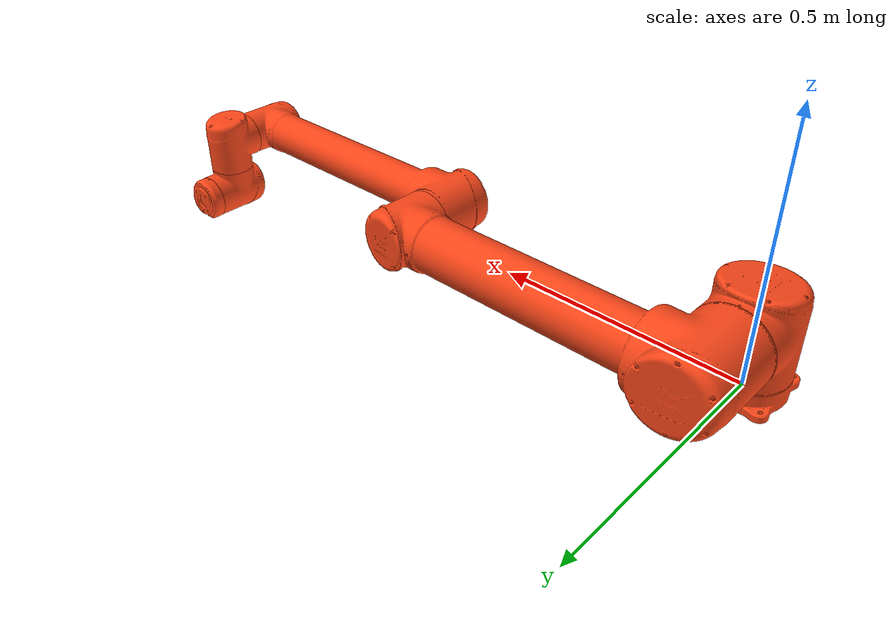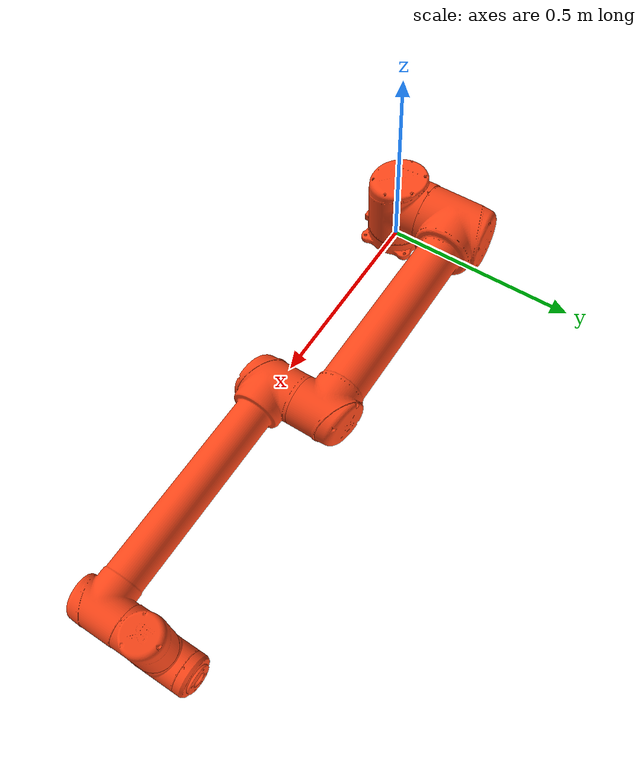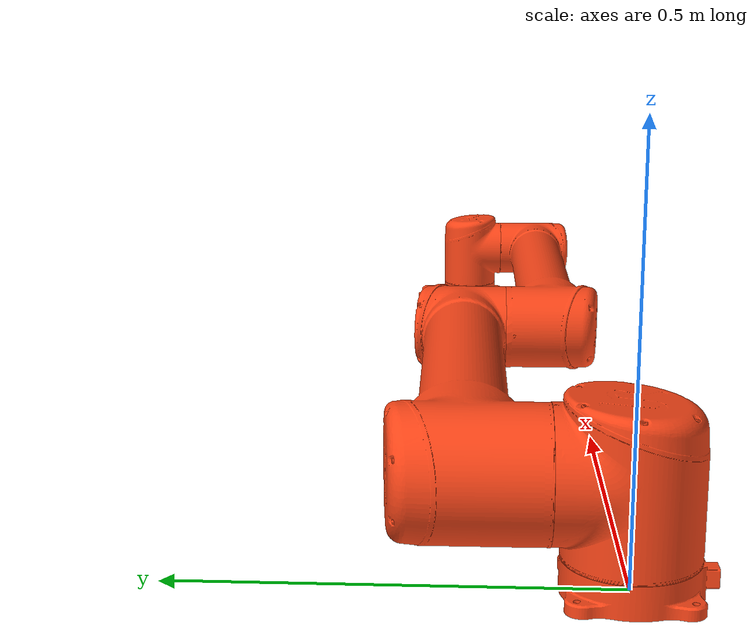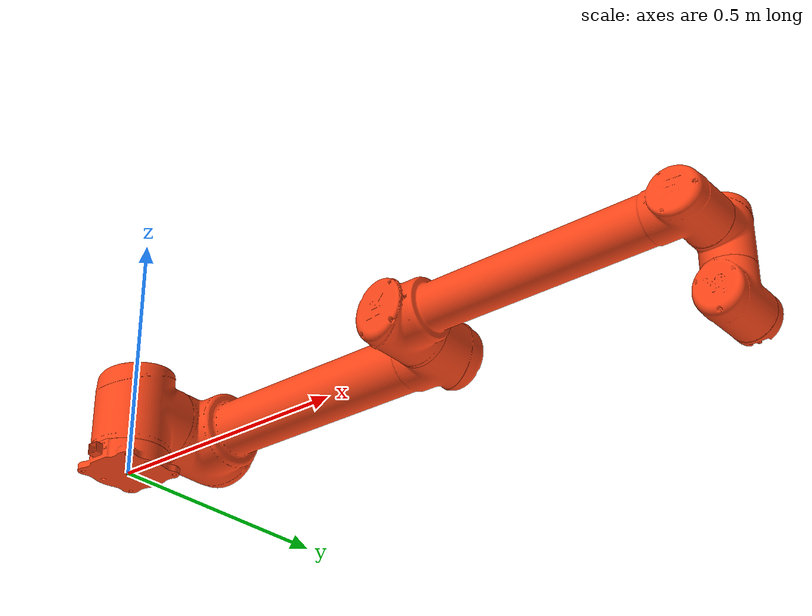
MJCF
<mujoco model="ur10_robot">
  <default>
    <default class="robot">
      <default class="motor">
        <joint />
        <motor />
      </default>
      <default class="visual">
        <geom material="visualgeom" contype="0" conaffinity="0" group="2" />
      </default>
      <default class="collision">
        <geom material="collision_material" condim="3" contype="0" conaffinity="1" priority="1" group="1" solref="0.005 1" friction="1 0.01 0.01" />
        <equality solimp="0.99 0.999 1e-05" solref="0.005 1" />
      </default>
    </default>
  </default>

  <compiler angle="radian" />

  <asset>
    <material name="LightGrey" rgba="0.7 0.7 0.7 1.0" />
    <material name="default_material" rgba="0.7 0.7 0.7 1" />
    <material name="collision_material" rgba="1.0 0.28 0.1 0.9" />
    <mesh name="base.stl" file="./collision/base.stl" />
    <mesh name="base.dae" file="./visual/base.dae" />
    <mesh name="shoulder.stl" file="./collision/shoulder.stl" />
    <mesh name="shoulder.dae" file="./visual/shoulder.dae" />
    <mesh name="upperarm.stl" file="./collision/upperarm.stl" />
    <mesh name="upperarm.dae" file="./visual/upperarm.dae" />
    <mesh name="forearm.stl" file="./collision/forearm.stl" />
    <mesh name="forearm.dae" file="./visual/forearm.dae" />
    <mesh name="wrist1.stl" file="./collision/wrist1.stl" />
    <mesh name="wrist1.dae" file="./visual/wrist1.dae" />
    <mesh name="wrist2.stl" file="./collision/wrist2.stl" />
    <mesh name="wrist2.dae" file="./visual/wrist2.dae" />
    <mesh name="wrist3.stl" file="./collision/wrist3.stl" />
    <mesh name="wrist3.dae" file="./visual/wrist3.dae" />
  </asset>

  <worldbody>
    <body name="base_link" pos="0.00000000 0.00000000 0.00000000" quat="1 0 0 0" childclass="robot">
      <freejoint name="floating_base" />
      <body name="base_link_inertia" pos="0 0 0" quat="6.123233995736766e-17 0.0 0.0 1.0">
        <inertial pos="0 0 0" quat="1.0 0.0 0.0 0.0" mass="4.0" diaginertia="0.0061063308908 0.0061063308908 0.01125" />
        <geom name="base_link_inertia_collision" pos="0 0 0" quat="6.123233995736766e-17 0.0 0.0 1.0" type="mesh" mesh="base.stl" class="collision" />
        <geom name="base_link_inertia_visual" pos="0 0 0" quat="6.123233995736766e-17 0.0 0.0 1.0" material="LightGrey" type="mesh" mesh="base.dae" class="visual" />
        <body name="shoulder_link" pos="0 0 0.1273" quat="1.0 0.0 0.0 0.0">
          <joint name="shoulder_pan_joint" type="hinge" ref="0.0" class="motor" range="-6.283185307179586 6.283185307179586" axis="0 0 1" />
          <inertial pos="0.021 -0.027 0.0" quat="0.7071067811865474 0.7071067811865477 0.0 0.0" mass="7.1" diaginertia="0.03408 0.03529 0.02156" />
          <geom name="shoulder_link_collision" pos="0 0 0" quat="6.123233995736766e-17 0.0 0.0 1.0" type="mesh" mesh="shoulder.stl" class="collision" />
          <geom name="shoulder_link_visual" pos="0 0 0" quat="6.123233995736766e-17 0.0 0.0 1.0" material="LightGrey" type="mesh" mesh="shoulder.dae" class="visual" />
          <body name="upper_arm_link" pos="0 0 0" quat="0.7071067811140325 0.7071067812590626 0.0 0.0">
            <joint name="shoulder_lift_joint" type="hinge" ref="0.0" class="motor" range="-6.283185307179586 6.283185307179586" axis="0 0 1" />
            <inertial pos="-0.232 0.0 0.158" quat="1.0 0.0 0.0 0.0" mass="12.7" diaginertia="0.02814 0.77068 0.76943" />
            <geom name="upper_arm_link_collision" pos="0 0 0.220941" quat="0.5000000000000001 0.5 -0.4999999999999999 -0.5" type="mesh" mesh="upperarm.stl" class="collision" />
            <geom name="upper_arm_link_visual" pos="0 0 0.220941" quat="0.5000000000000001 0.5 -0.4999999999999999 -0.5" material="LightGrey" type="mesh" mesh="upperarm.dae" class="visual" />
            <body name="forearm_link" pos="-0.612 0 0" quat="1.0 0.0 0.0 0.0">
              <joint name="elbow_joint" type="hinge" ref="0.0" class="motor" range="-3.141592653589793 3.141592653589793" axis="0 0 1" />
              <inertial pos="-0.3323 0.0 0.068" quat="1.0 0.0 0.0 0.0" mass="4.27" diaginertia="0.01014 0.30928 0.30646" />
              <geom name="forearm_link_collision" pos="0 0 0.049042" quat="0.5000000000000001 0.5 -0.4999999999999999 -0.5" type="mesh" mesh="forearm.stl" class="collision" />
              <geom name="forearm_link_visual" pos="0 0 0.049042" quat="0.5000000000000001 0.5 -0.4999999999999999 -0.5" material="LightGrey" type="mesh" mesh="forearm.dae" class="visual" />
              <body name="wrist_1_link" pos="-0.5723 0 0.163941" quat="1.0 0.0 0.0 0.0">
                <joint name="wrist_1_joint" type="hinge" ref="0.0" class="motor" range="-6.283185307179586 6.283185307179586" axis="0 0 1" />
                <inertial pos="0.0 -0.018 0.007" quat="0.7071067811865474 0.7071067811865477 0.0 0.0" mass="2.0" diaginertia="0.00296 0.00222 0.00258" />
                <geom name="wrist_1_link_collision" pos="0 0 -0.1149" quat="0.7071067811865476 0.7071067811865475 0.0 0.0" type="mesh" mesh="wrist1.stl" class="collision" />
                <geom name="wrist_1_link_visual" pos="0 0 -0.1149" quat="0.7071067811865476 0.7071067811865475 0.0 0.0" material="LightGrey" type="mesh" mesh="wrist1.dae" class="visual" />
                <body name="wrist_2_link" pos="0 -0.1157 -2.373046667922381e-11" quat="0.7071067811140325 0.7071067812590626 0.0 0.0">
                  <joint name="wrist_2_joint" type="hinge" ref="0.0" class="motor" range="-6.283185307179586 6.283185307179586" axis="0 0 1" />
                  <inertial pos="0.0 0.018 -0.007" quat="0.7071067811865474 -0.7071067811865477 0.0 0.0" mass="2.0" diaginertia="0.00296 0.00222 0.00258" />
                  <geom name="wrist_2_link_collision" pos="0 0 -0.1158" quat="1.0 0.0 0.0 0.0" type="mesh" mesh="wrist2.stl" class="collision" />
                  <geom name="wrist_2_link_visual" pos="0 0 -0.1158" quat="1.0 0.0 0.0 0.0" material="LightGrey" type="mesh" mesh="wrist2.dae" class="visual" />
                  <body name="wrist_3_link" pos="0 0.0922 -1.891053610911353e-11" quat="0.7071067811140325 -0.7071067812590626 8.659560562354933e-17 8.880527684815676e-27">
                    <joint name="wrist_3_joint" type="hinge" ref="0.0" class="motor" range="-6.283185307179586 6.283185307179586" axis="0 0 1" />
                    <inertial pos="0.0 0 -0.026" quat="1.0 0.0 0.0 0.0" mass="0.365" diaginertia="0.0004 0.00041 0.00034" />
                    <geom name="wrist_3_link_collision" pos="0 0 -0.0922" quat="0.7071067811865476 0.7071067811865475 0.0 0.0" type="mesh" mesh="wrist3.stl" class="collision" />
                    <geom name="wrist_3_link_visual" pos="0 0 -0.0922" quat="0.7071067811865476 0.7071067811865475 0.0 0.0" material="LightGrey" type="mesh" mesh="wrist3.dae" class="visual" />
                    <body name="flange" pos="0 0 0" quat="0.5000000000000001 -0.4999999999999999 -0.5 -0.5">
                      <body name="tool0" pos="0 0 0" quat="0.5000000000000001 0.5 0.4999999999999999 0.5" />
                    </body>
                  </body>
                </body>
              </body>
            </body>
          </body>
        </body>
      </body>
      <body name="base" pos="0 0 0" quat="6.123233995736766e-17 0.0 0.0 1.0" />
      <site name="base_link_site" pos="0 0 0" quat="1 0 0 0" />
      <camera name="front_camera" mode="track" fovy="90.0" quat="4.329780281177467e-17 4.329780281177466e-17 0.7071067811865475 0.7071067811865476" pos="0.0 2.0 0.5" />
      <camera name="side_camera" mode="track" fovy="90.0" quat="-0.5 -0.4999999999999999 0.5 0.5000000000000001" pos="-2.0 0.0 0.5" />
    </body>
  </worldbody>

  <actuator>
    <motor name="shoulder_pan_joint_ctrl" joint="shoulder_pan_joint" class="motor" />
    <motor name="shoulder_lift_joint_ctrl" joint="shoulder_lift_joint" class="motor" />
    <motor name="elbow_joint_ctrl" joint="elbow_joint" class="motor" />
    <motor name="wrist_1_joint_ctrl" joint="wrist_1_joint" class="motor" />
    <motor name="wrist_2_joint_ctrl" joint="wrist_2_joint" class="motor" />
    <motor name="wrist_3_joint_ctrl" joint="wrist_3_joint" class="motor" />
  </actuator>

  <contact>
    <exclude body1="base_link_inertia" body2="shoulder_link" />
    <exclude body1="shoulder_link" body2="upper_arm_link" />
    <exclude body1="upper_arm_link" body2="forearm_link" />
    <exclude body1="forearm_link" body2="wrist_1_link" />
    <exclude body1="wrist_1_link" body2="wrist_2_link" />
    <exclude body1="wrist_2_link" body2="wrist_3_link" />
  </contact>

  <sensor>
    <framepos name="base_link_site_pos" objtype="site" objname="base_link_site" />
    <framequat name="base_link_site_quat" objtype="site" objname="base_link_site" />
    <framelinvel name="base_link_site_linvel" objtype="site" objname="base_link_site" />
    <frameangvel name="base_link_site_angvel" objtype="site" objname="base_link_site" />
    <velocimeter name="base_link_site_vel" site="base_link_site" />
  </sensor>
</mujoco>
